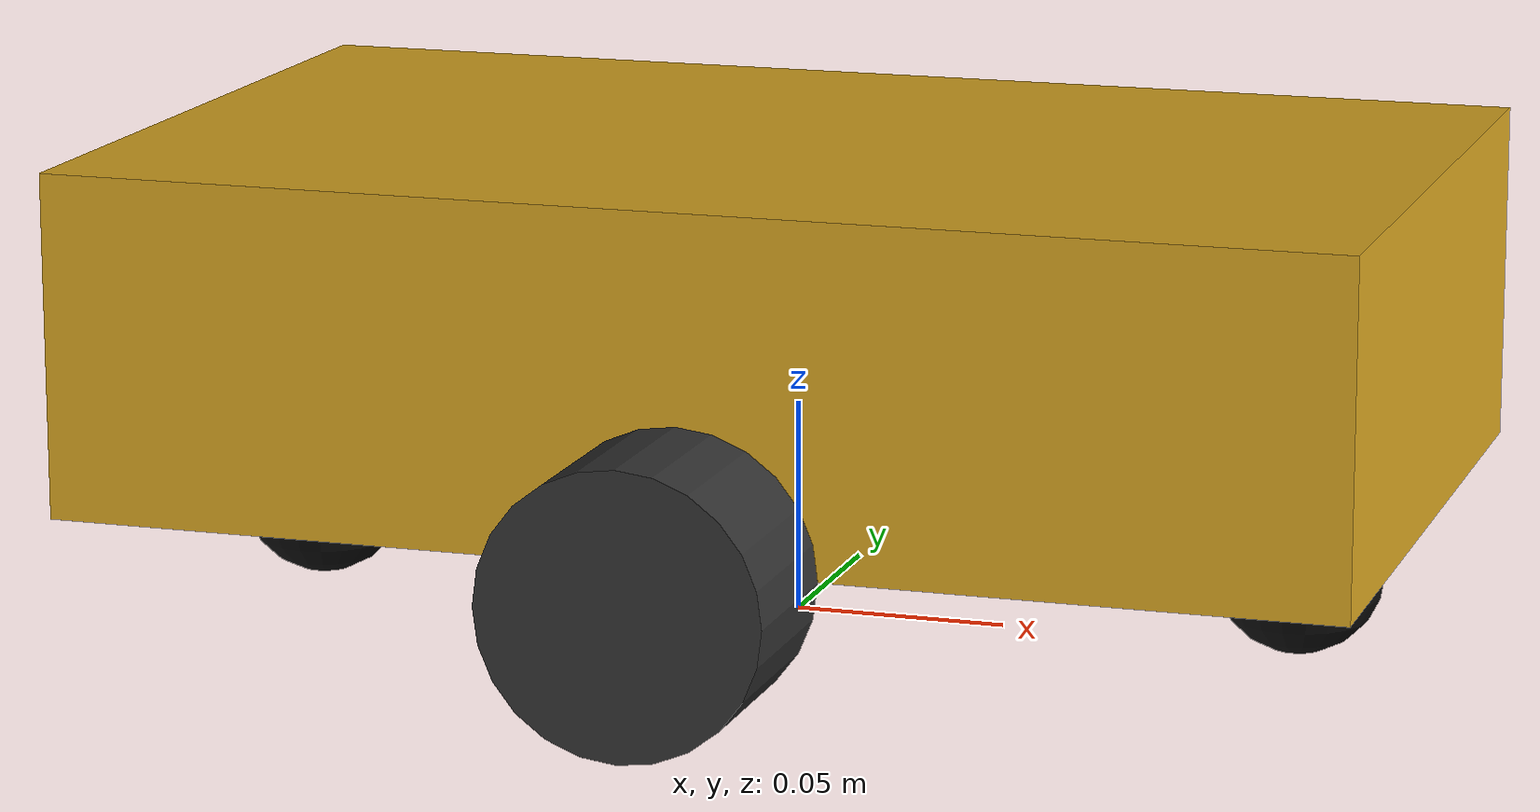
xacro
<?xml version="1.0"?>
<robot xmlns:xacro="http://www.ros.org/wiki/xacro">

  <!-- Dimensions and Properties for YP100 Tank Chassis -->
  <xacro:property name="chassis_length" value="0.300"/>
  <xacro:property name="chassis_width" value="0.180"/>
  <xacro:property name="chassis_height" value="0.080"/>
  <xacro:property name="chassis_mass" value="2.0"/>

  <xacro:property name="wheel_radius" value="0.0325"/>
  <xacro:property name="wheel_width" value="0.040"/>
  <xacro:property name="wheel_mass" value="0.2"/>
  <xacro:property name="wheel_separation" value="0.220"/>

  <xacro:property name="caster_radius" value="0.020"/>
  <xacro:property name="caster_mass" value="0.1"/>

  <!-- Colors -->
  <material name="yp100_gold">
    <color rgba="0.85 0.65 0.13 1.0"/>
  </material>

  <material name="dark_grey">
    <color rgba="0.2 0.2 0.2 1.0"/>
  </material>

  <material name="black">
    <color rgba="0.05 0.05 0.05 1.0"/>
  </material>

  <material name="red">
    <color rgba="0.8 0.1 0.1 1.0"/>
  </material>

  <!-- Base Footprint (Ground Projection) -->
  <link name="base_footprint"/>

  <!-- Base Joint -->
  <joint name="base_joint" type="fixed">
    <parent link="base_footprint"/>
    <child link="base_link"/>
    <origin xyz="0 0 ${wheel_radius}" rpy="0 0 0"/>
  </joint>

  <!-- Base Link (Chassis) -->
  <link name="base_link">
    <visual>
      <origin xyz="0 0 ${chassis_height/2}" rpy="0 0 0"/>
      <geometry>
        <box size="${chassis_length} ${chassis_width} ${chassis_height}"/>
      </geometry>
      <material name="yp100_gold"/>
    </visual>
    <collision>
      <origin xyz="0 0 ${chassis_height/2}" rpy="0 0 0"/>
      <geometry>
        <box size="${chassis_length} ${chassis_width} ${chassis_height}"/>
      </geometry>
    </collision>
    <inertial>
      <origin xyz="0 0 ${chassis_height/2}" rpy="0 0 0"/>
      <mass value="${chassis_mass}"/>
      <inertia
        ixx="${(1/12) * chassis_mass * (chassis_width*chassis_width + chassis_height*chassis_height)}"
        ixy="0.0"
        ixz="0.0"
        iyy="${(1/12) * chassis_mass * (chassis_length*chassis_length + chassis_height*chassis_height)}"
        iyz="0.0"
        izz="${(1/12) * chassis_mass * (chassis_length*chassis_length + chassis_width*chassis_width)}"/>
    </inertial>
  </link>

  <gazebo reference="base_link">
    <material>Gazebo/Gold</material>
  </gazebo>

  <!-- Left Drive Wheel -->
  <joint name="left_wheel_joint" type="continuous">
    <parent link="base_link"/>
    <child link="left_wheel"/>
    <origin xyz="0 ${wheel_separation/2} 0" rpy="-${pi/2} 0 0"/>
    <axis xyz="0 0 1"/>
  </joint>

  <link name="left_wheel">
    <visual>
      <geometry>
        <cylinder radius="${wheel_radius}" length="${wheel_width}"/>
      </geometry>
      <material name="dark_grey"/>
    </visual>
    <collision>
      <geometry>
        <cylinder radius="${wheel_radius}" length="${wheel_width}"/>
      </geometry>
    </collision>
    <inertial>
      <mass value="${wheel_mass}"/>
      <inertia
        ixx="${(1/12) * wheel_mass * (3*wheel_radius*wheel_radius + wheel_width*wheel_width)}"
        ixy="0.0"
        ixz="0.0"
        iyy="${(1/12) * wheel_mass * (3*wheel_radius*wheel_radius + wheel_width*wheel_width)}"
        iyz="0.0"
        izz="${(1/2) * wheel_mass * wheel_radius * wheel_radius}"/>
    </inertial>
  </link>

  <gazebo reference="left_wheel">
    <material>Gazebo/DarkGrey</material>
    <mu1 value="1.0"/>
    <mu2 value="1.0"/>
    <kp value="1000000.0"/>
    <kd value="100.0"/>
  </gazebo>

  <!-- Right Drive Wheel -->
  <joint name="right_wheel_joint" type="continuous">
    <parent link="base_link"/>
    <child link="right_wheel"/>
    <origin xyz="0 -${wheel_separation/2} 0" rpy="${pi/2} 0 0"/>
    <axis xyz="0 0 -1"/>
  </joint>

  <link name="right_wheel">
    <visual>
      <geometry>
        <cylinder radius="${wheel_radius}" length="${wheel_width}"/>
      </geometry>
      <material name="dark_grey"/>
    </visual>
    <collision>
      <geometry>
        <cylinder radius="${wheel_radius}" length="${wheel_width}"/>
      </geometry>
    </collision>
    <inertial>
      <mass value="${wheel_mass}"/>
      <inertia
        ixx="${(1/12) * wheel_mass * (3*wheel_radius*wheel_radius + wheel_width*wheel_width)}"
        ixy="0.0"
        ixz="0.0"
        iyy="${(1/12) * wheel_mass * (3*wheel_radius*wheel_radius + wheel_width*wheel_width)}"
        iyz="0.0"
        izz="${(1/2) * wheel_mass * wheel_radius * wheel_radius}"/>
    </inertial>
  </link>

  <gazebo reference="right_wheel">
    <material>Gazebo/DarkGrey</material>
    <mu1 value="1.0"/>
    <mu2 value="1.0"/>
    <kp value="1000000.0"/>
    <kd value="100.0"/>
  </gazebo>

  <!-- Front Support/Caster Wheel (Frictionless for pitch stability in Gazebo) -->
  <joint name="front_caster_joint" type="fixed">
    <parent link="base_link"/>
    <child link="front_caster"/>
    <origin xyz="${chassis_length/2 - 0.03} 0 ${caster_radius - wheel_radius}" rpy="0 0 0"/>
  </joint>

  <link name="front_caster">
    <visual>
      <geometry>
        <sphere radius="${caster_radius}"/>
      </geometry>
      <material name="black"/>
    </visual>
    <collision>
      <geometry>
        <sphere radius="${caster_radius}"/>
      </geometry>
    </collision>
    <inertial>
      <mass value="${caster_mass}"/>
      <inertia
        ixx="${(2/5) * caster_mass * caster_radius * caster_radius}" ixy="0.0" ixz="0.0"
        iyy="${(2/5) * caster_mass * caster_radius * caster_radius}" iyz="0.0"
        izz="${(2/5) * caster_mass * caster_radius * caster_radius}"/>
    </inertial>
  </link>

  <gazebo reference="front_caster">
    <material>Gazebo/Black</material>
    <mu1 value="0.001"/>
    <mu2 value="0.001"/>
  </gazebo>

  <!-- Rear Support/Caster Wheel (Frictionless for pitch stability in Gazebo) -->
  <joint name="rear_caster_joint" type="fixed">
    <parent link="base_link"/>
    <child link="rear_caster"/>
    <origin xyz="-${chassis_length/2 - 0.03} 0 ${caster_radius - wheel_radius}" rpy="0 0 0"/>
  </joint>

  <link name="rear_caster">
    <visual>
      <geometry>
        <sphere radius="${caster_radius}"/>
      </geometry>
      <material name="black"/>
    </visual>
    <collision>
      <geometry>
        <sphere radius="${caster_radius}"/>
      </geometry>
    </collision>
    <inertial>
      <mass value="${caster_mass}"/>
      <inertia
        ixx="${(2/5) * caster_mass * caster_radius * caster_radius}" ixy="0.0" ixz="0.0"
        iyy="${(2/5) * caster_mass * caster_radius * caster_radius}" iyz="0.0"
        izz="${(2/5) * caster_mass * caster_radius * caster_radius}"/>
    </inertial>
  </link>

  <gazebo reference="rear_caster">
    <material>Gazebo/Black</material>
    <mu1 value="0.001"/>
    <mu2 value="0.001"/>
  </gazebo>

</robot>
